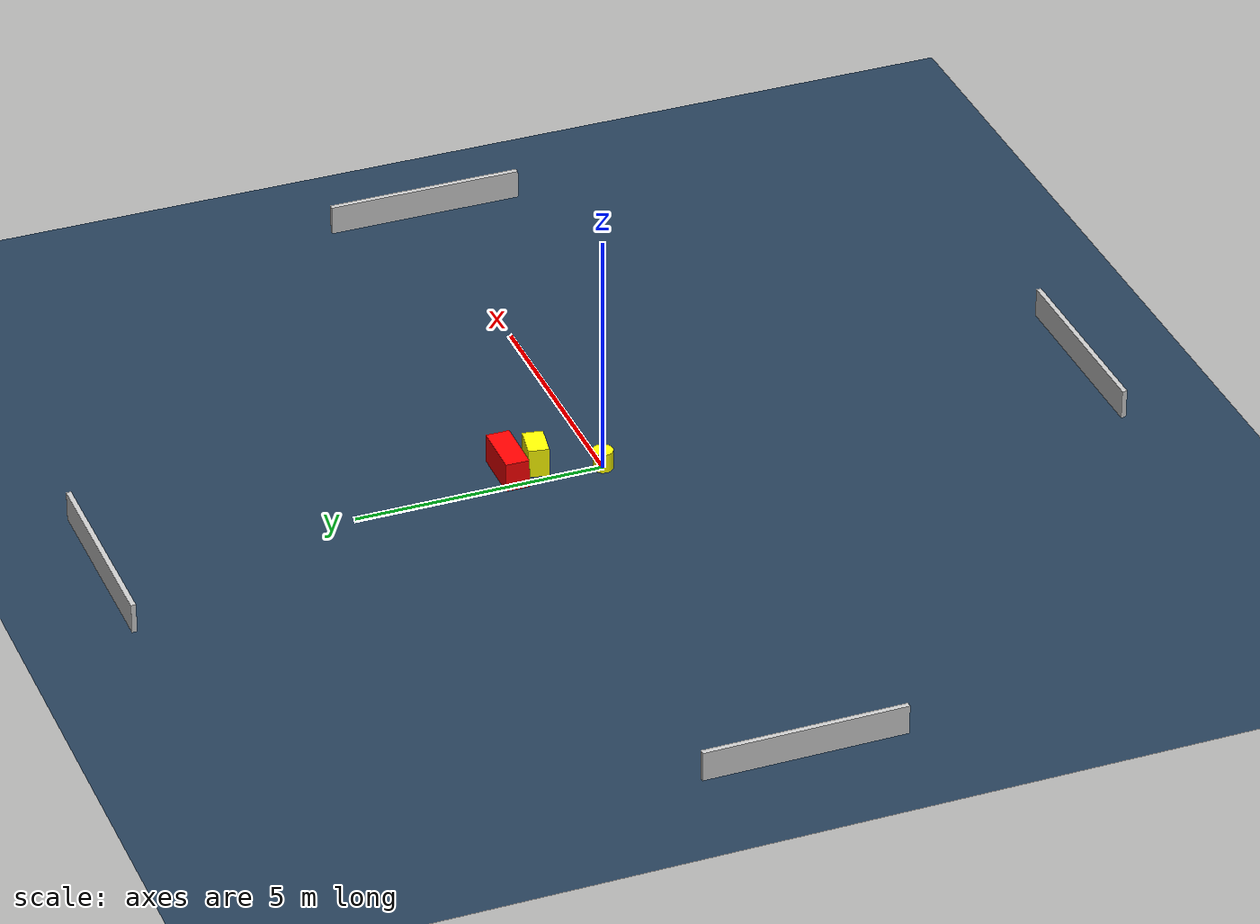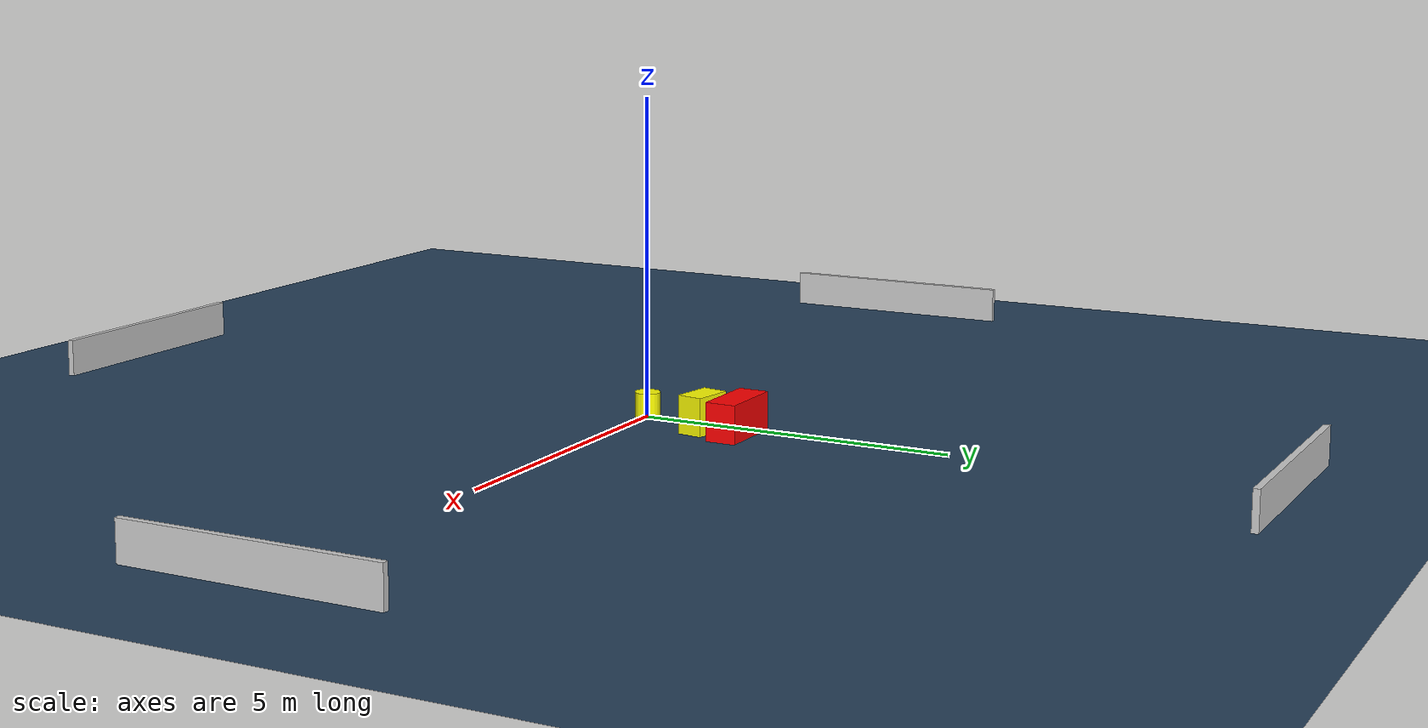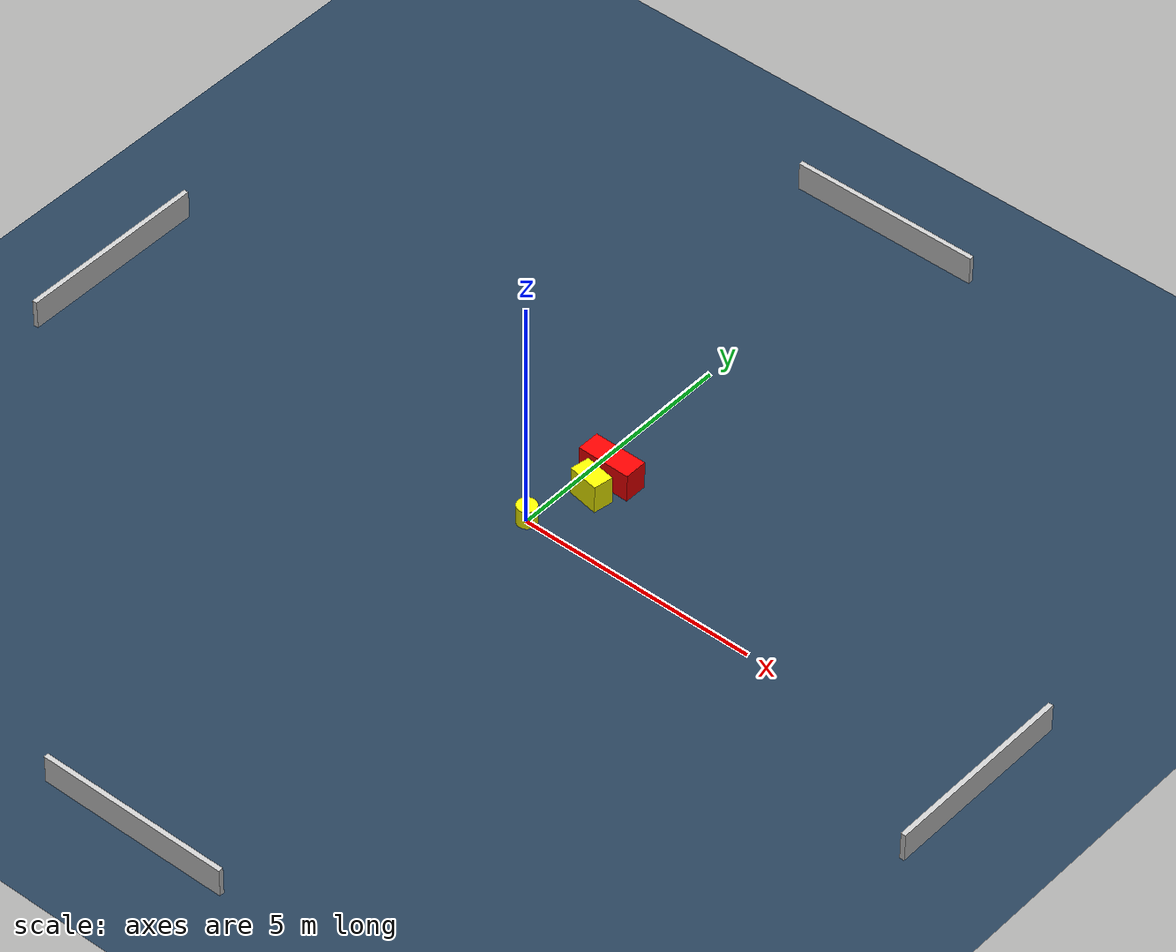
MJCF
<?xml version="1.0" ?>
<mujoco model="generated_environment">
  <option timestep="0.01" integrator="RK4" cone="elliptic"/>
  <default>
    <geom density="1"/>
  </default>
  <asset>
    <texture builtin="gradient" height="3072" name="skybox" rgb1="0.3 0.5 0.7" rgb2="0 0 0" type="skybox" width="512"/>
    <texture builtin="checker" height="300" name="groundplane" rgb1="0.2 0.3 0.4" rgb2="0.1 0.2 0.3" type="2d" width="300"/>
    <material name="groundplane" reflectance="0.2" texrepeat="5 5" texture="groundplane"/>
  </asset>
  <worldbody>
    <light dir="0 0 -1" directional="true" pos="0 0 1.5"/>
    <geom condim="3" friction="0.5 0.005 0.001" material="groundplane" name="floor" pos="0 0 0" size="0 0 0.05" type="plane"/>
    <body name="walls">
      <geom name="wall_1" condim="4" pos="-10.0 0.0 0.3" rgba="0.800000011920929 0.800000011920929 0.800000011920929 1.0" size="0.05 2.0 0.3" type="box"/>
      <geom name="wall_2" condim="4" pos="10.0 0.0 0.3" rgba="0.800000011920929 0.800000011920929 0.800000011920929 1.0" size="0.05 2.0 0.3" type="box"/>
      <geom name="wall_3" condim="4" pos="0.0 -10.0 0.3" rgba="0.800000011920929 0.800000011920929 0.800000011920929 1.0" size="2.0 0.05 0.3" type="box"/>
      <geom name="wall_4" condim="4" pos="0.0 10.0 0.3" rgba="0.800000011920929 0.800000011920929 0.800000011920929 1.0" size="2.0 0.05 0.3" type="box"/>
    </body>
    <body name="robot">
      <joint name="joint_x" type="slide" pos="0 0 0" axis="1 0 0"/>
      <joint name="joint_y" type="slide" pos="0 0 0" axis="0 1 0"/>
      <geom name="robot" type="cylinder" pos="0.0 0.0 0.2" size="0.2 0.2 0.0" mass="5.0" friction="1.0 0.005 0.0001" condim="4" rgba="1.0 1.0 0.0 1.0"/>
    </body>
    <body name="obstacle_1_movable">
      <geom name="obstacle_1_movable" condim="4" pos="0.46255905874697545 1.1963154263968634 0.3" euler="0 0 80.18101714144312" friction="0.0 0.005 0.001" rgba="1.0 1.0 0.0 1.0" size="0.20435643424803157 0.32683522719767777 0.3" type="box" mass="0.1"/>
      <joint type="free"/>
    </body>
    <body name="obstacle_2_static">
      <geom name="obstacle_2_static" condim="4" pos="0.43868653031943766 1.7744137762684067 0.3" euler="0 0 269.494178110862" friction="0.0 0.005 0.001" rgba="1.0 0.0 0.0 1.0" size="0.23824020285448774 0.5583337068964274 0.3" type="box"/>
    </body>
  </worldbody>
  <actuator>
    <motor name="actuator_x" joint="joint_x" gear="1" ctrlrange="-1 1"/>
    <motor name="actuator_y" joint="joint_y" gear="1" ctrlrange="-1 1"/>
  </actuator>
</mujoco>
